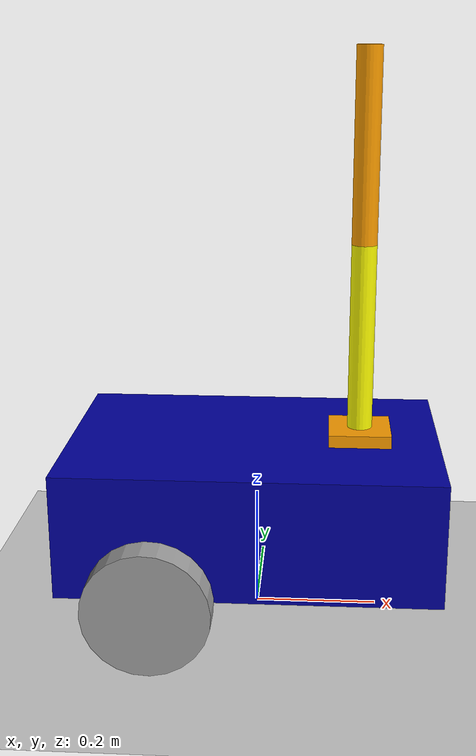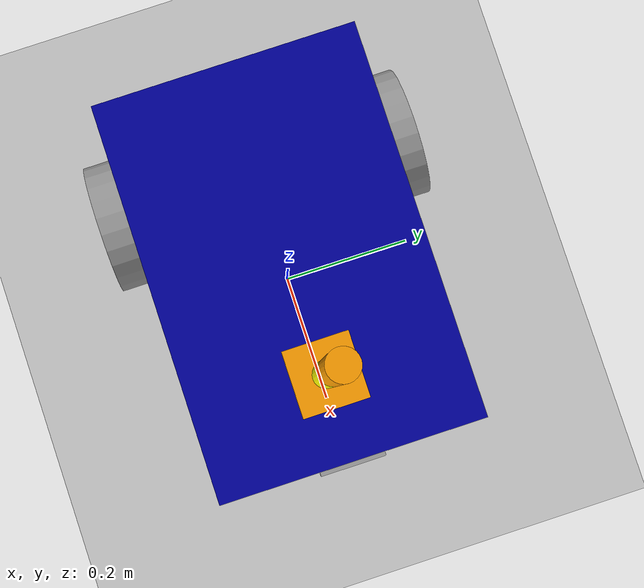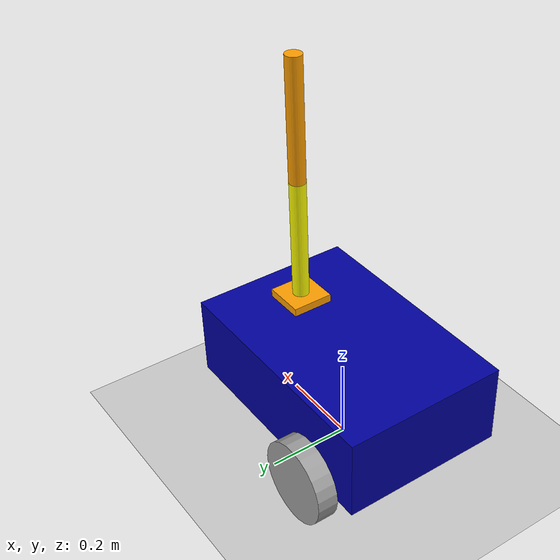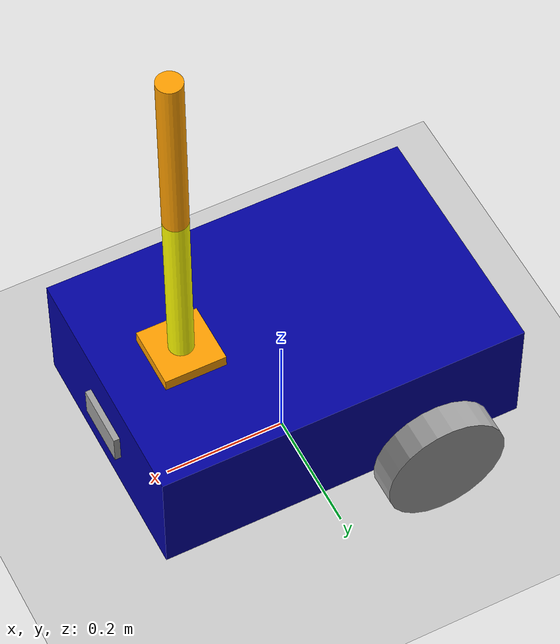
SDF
<?xml version="1.0"?>
<sdf version='1.9'>
  <world name='my_robot_world'>
    <physics name='1ms' type='ignored'>
      <max_step_size>0.001</max_step_size>
      <real_time_factor>1</real_time_factor>
      <real_time_update_rate>1000</real_time_update_rate>
    </physics>
    <plugin name='gz::sim::systems::Physics' filename='ignition-gazebo-physics-system'/>
    <plugin name='gz::sim::systems::UserCommands' filename='ignition-gazebo-user-commands-system'/>
    <plugin name='gz::sim::systems::SceneBroadcaster' filename='ignition-gazebo-scene-broadcaster-system'/>
    <plugin name='gz::sim::systems::Contact' filename='ignition-gazebo-contact-system'/>
    <gravity>0 0 -9.8</gravity>
    <magnetic_field>6e-06 2.3e-05 -4.2e-05</magnetic_field>
    <atmosphere type='adiabatic'/>
    <scene>
      <ambient>0.4 0.4 0.4 1</ambient>
      <background>0.7 0.7 0.7 1</background>
      <shadows>true</shadows>
    </scene>
    <!-- Keyboard movement -->
    <plugin name='ignition::gazebo::systems::TriggeredPublisher' filename='libignition-gazebo-triggered-publisher-system.so'>
      <input type='ignition.msgs.Int32' topic='/keyboard/keypress'>
        <match field='data'>16777235</match><!-- Up -->
      </input>
      <output type='ignition.msgs.Twist' topic='/cmd_vel'>linear: {x: 0.5}, angular: {z: 0.0}</output>
    </plugin>
    <plugin name='ignition::gazebo::systems::TriggeredPublisher' filename='libignition-gazebo-triggered-publisher-system.so'>
      <input type='ignition.msgs.Int32' topic='/keyboard/keypress'>
        <match field='data'>16777237</match><!-- Down -->
      </input>
      <output type='ignition.msgs.Twist' topic='/cmd_vel'>linear: {x: -0.5}, angular: {z: 0.0}</output>
    </plugin>
    <plugin name='ignition::gazebo::systems::TriggeredPublisher' filename='libignition-gazebo-triggered-publisher-system.so'>
      <input type='ignition.msgs.Int32' topic='/keyboard/keypress'>
        <match field='data'>16777234</match><!-- Left -->
      </input>
      <output type='ignition.msgs.Twist' topic='/cmd_vel'>linear: {x: 0.0}, angular: {z: 0.5}</output>
    </plugin>
    <plugin name='ignition::gazebo::systems::TriggeredPublisher' filename='libignition-gazebo-triggered-publisher-system.so'>
      <input type='ignition.msgs.Int32' topic='/keyboard/keypress'>
        <match field='data'>16777236</match><!-- Right -->
      </input>
      <output type='ignition.msgs.Twist' topic='/cmd_vel'>linear: {x: 0.0}, angular: {z: -0.5}</output>
    </plugin>
    <plugin name='ignition::gazebo::systems::TriggeredPublisher' filename='libignition-gazebo-triggered-publisher-system.so'>
      <input type='ignition.msgs.Int32' topic='/keyboard/keypress'>
        <match field='data'>48</match><!-- Stop -->
      </input>
      <output type='ignition.msgs.Twist' topic='/cmd_vel'>linear: {x: 0.0}, angular: {z: 0.0}</output>
    </plugin>
    <plugin name='ignition::gazebo::systems::TriggeredPublisher' filename='libignition-gazebo-triggered-publisher-system.so'>
      <input type='ignition.msgs.Int32' topic='/keyboard/keypress'>
        <match field='data'>16777221</match><!-- Reset arm intro numpad -->
      </input>
      <output type='ignition.msgs.Double' topic='/model/urdf_model/joint/arm_base_forearm_joint/0/cmd_pos'>data: 0.0</output>
      <output type='ignition.msgs.Double' topic='/model/urdf_model/joint/forearm_hand_joint/0/cmd_pos'>data: 0.0</output>
    </plugin>
    <model name='ground_plane'>
      <static>true</static>
      <link name='link'>
        <collision name='collision'>
          <geometry>
            <plane>
              <normal>0 0 1</normal>
              <size>100 100</size>
            </plane>
          </geometry>
          <surface>
            <friction>
              <ode/>
            </friction>
            <bounce/>
            <contact/>
          </surface>
        </collision>
        <visual name='visual'>
          <geometry>
            <plane>
              <normal>0 0 1</normal>
              <size>100 100</size>
            </plane>
          </geometry>
          <material>
            <ambient>0.8 0.8 0.8 1</ambient>
            <diffuse>0.8 0.8 0.8 1</diffuse>
            <specular>0.8 0.8 0.8 1</specular>
          </material>
        </visual>
        <pose>0 0 0 0 -0 0</pose>
        <inertial>
          <pose>0 0 0 0 -0 0</pose>
          <mass>1</mass>
          <inertia>
            <ixx>1</ixx>
            <ixy>0</ixy>
            <ixz>0</ixz>
            <iyy>1</iyy>
            <iyz>0</iyz>
            <izz>1</izz>
          </inertia>
        </inertial>
        <enable_wind>false</enable_wind>
      </link>
      <pose>0 0 0 0 -0 0</pose>
      <self_collide>false</self_collide>
    </model>
    <model name='urdf_model'>
      <link name='base_footprint'>
        <inertial>
          <pose>0.035445 0 0.196721 0 -0 0</pose>
          <mass>6.0999999999999996</mass>
          <inertia>
            <ixx>0.68675600000000003</ixx>
            <ixy>-1.13311e-19</ixy>
            <ixz>0.0048625300000000003</ixz>
            <iyy>0.92275099999999999</iyy>
            <iyz>0</iyz>
            <izz>0.37220399999999998</izz>
          </inertia>
        </inertial>
        <collision name='base_footprint_fixed_joint_lump__base_link_collision'>
          <pose>0 0 0.2 0 0 0</pose>
          <geometry>
            <box>
              <size>0.6 0.4 0.2</size>
            </box>
          </geometry>
          <surface>
            <friction>
              <ode/>
            </friction>
            <bounce/>
            <contact/>
          </surface>
        </collision>
        <collision name='base_footprint_fixed_joint_lump__camera_link_collision_1'>
          <pose>0.305 0 0.2 0 0 0</pose>
          <geometry>
            <box>
              <size>0.01 0.1 0.05</size>
            </box>
          </geometry>
          <surface>
            <friction>
              <ode/>
            </friction>
            <bounce/>
            <contact/>
          </surface>
        </collision>
        <collision name='base_footprint_fixed_joint_lump__caster_wheel_link_collision_2'>
          <pose>0.2 0 0.05 0 0 0</pose>
          <geometry>
            <sphere>
              <radius>0.050000000000000003</radius>
            </sphere>
          </geometry>
          <surface>
            <friction>
              <ode>
                <mu>0.1</mu>
                <mu2>0.1</mu2>
              </ode>
            </friction>
            <bounce/>
            <contact/>
          </surface>
        </collision>
        <collision name='base_footprint_fixed_joint_lump__arm_base_link_collision_3'>
          <pose>0.1714285714285714 0 0.3100000000000001 0 0 1.570796326794896</pose>
          <geometry>
            <box>
              <size>0.1 0.1 0.02</size>
            </box>
          </geometry>
          <surface>
            <friction>
              <ode/>
            </friction>
            <bounce/>
            <contact/>
          </surface>
        </collision>
        <visual name='base_footprint_fixed_joint_lump__base_link_visual'>
          <pose>0 0 0.2 0 0 0</pose>
          <geometry>
            <box>
              <size>0.6 0.4 0.2</size>
            </box>
          </geometry>
          <material>
            <diffuse>0 0 0.625 1</diffuse>
            <ambient>0 0 0.625 1</ambient>
          </material>
        </visual>
        <visual name='base_footprint_fixed_joint_lump__camera_link_visual_1'>
          <pose>0.305 0 0.2 0 0 0</pose>
          <geometry>
            <box>
              <size>0.01 0.1 0.05</size>
            </box>
          </geometry>
          <material>
            <diffuse>0.625 0.625 0.625 1</diffuse>
            <ambient>0.625 0.625 0.625 1</ambient>
          </material>
        </visual>
        <visual name='base_footprint_fixed_joint_lump__caster_wheel_link_visual_2'>
          <pose>0.2 0 0.05 0 0 0</pose>
          <geometry>
            <sphere>
              <radius>0.050000000000000003</radius>
            </sphere>
          </geometry>
          <material>
            <diffuse>0.625 0.625 0.625 1</diffuse>
            <ambient>0.625 0.625 0.625 1</ambient>
          </material>
        </visual>
        <visual name='base_footprint_fixed_joint_lump__arm_base_link_visual_3'>
          <pose>0.1714285714285714 0 0.3100000000000001 0 0 1.570796326794896</pose>
          <geometry>
            <box>
              <size>0.1 0.1 0.02</size>
            </box>
          </geometry>
          <material>
            <diffuse>1 0.625 0 1</diffuse>
            <ambient>1 0.625 0 1</ambient>
          </material>
        </visual>
        <pose>0 0 0 0 -0 0</pose>
        <enable_wind>false</enable_wind>
      </link>
      <joint name='base_left_wheel_joint' type='revolute'>
        <pose>0 0 0 0 -0 0</pose>
        <parent>base_footprint</parent>
        <child>left_wheel_link</child>
        <axis>
          <xyz>0 1 0</xyz>
          <limit>
            <lower>-10000000000000000</lower>
            <upper>10000000000000000</upper>
            <effort>inf</effort>
            <velocity>inf</velocity>
            <stiffness>100000000</stiffness>
            <dissipation>1</dissipation>
          </limit>
          <dynamics>
            <spring_reference>0</spring_reference>
            <spring_stiffness>0</spring_stiffness>
            <damping>0</damping>
            <friction>0</friction>
          </dynamics>
        </axis>
      </joint>
      <link name='left_wheel_link'>
        <pose>-0.15 0.225 0.1 -0 -0.059289 -0</pose>
        <inertial>
          <pose>0 0 0 1.5708 -0 0</pose>
          <mass>1</mass>
          <inertia>
            <ixx>0.010833300000000001</ixx>
            <ixy>0</ixy>
            <ixz>0</ixz>
            <iyy>0.010833300000000001</iyy>
            <iyz>0</iyz>
            <izz>0.02</izz>
          </inertia>
        </inertial>
        <collision name='left_wheel_link_collision'>
          <pose>0 0 0 1.570796326794896 0 0</pose>
          <geometry>
            <cylinder>
              <length>0.050000000000000003</length>
              <radius>0.10000000000000001</radius>
            </cylinder>
          </geometry>
          <surface>
            <friction>
              <ode/>
            </friction>
            <bounce/>
            <contact/>
          </surface>
        </collision>
        <visual name='left_wheel_link_visual'>
          <pose>0 0 0 1.570796326794896 0 0</pose>
          <geometry>
            <cylinder>
              <length>0.050000000000000003</length>
              <radius>0.10000000000000001</radius>
            </cylinder>
          </geometry>
          <material>
            <diffuse>0.625 0.625 0.625 1</diffuse>
            <ambient>0.625 0.625 0.625 1</ambient>
          </material>
        </visual>
        <enable_wind>false</enable_wind>
      </link>
      <joint name='base_right_wheel_joint' type='revolute'>
        <pose>0 0 0 0 -0 0</pose>
        <parent>base_footprint</parent>
        <child>right_wheel_link</child>
        <axis>
          <xyz>0 1 0</xyz>
          <limit>
            <lower>-10000000000000000</lower>
            <upper>10000000000000000</upper>
            <effort>inf</effort>
            <velocity>inf</velocity>
            <stiffness>100000000</stiffness>
            <dissipation>1</dissipation>
          </limit>
          <dynamics>
            <spring_reference>0</spring_reference>
            <spring_stiffness>0</spring_stiffness>
            <damping>0</damping>
            <friction>0</friction>
          </dynamics>
        </axis>
      </joint>
      <link name='right_wheel_link'>
        <pose>-0.15 -0.225 0.1 -0 -0.059289 -0</pose>
        <inertial>
          <pose>0 0 0 1.5708 -0 0</pose>
          <mass>1</mass>
          <inertia>
            <ixx>0.010833300000000001</ixx>
            <ixy>0</ixy>
            <ixz>0</ixz>
            <iyy>0.010833300000000001</iyy>
            <iyz>0</iyz>
            <izz>0.02</izz>
          </inertia>
        </inertial>
        <collision name='right_wheel_link_collision'>
          <pose>0 0 0 1.570796326794896 0 0</pose>
          <geometry>
            <cylinder>
              <length>0.050000000000000003</length>
              <radius>0.10000000000000001</radius>
            </cylinder>
          </geometry>
          <surface>
            <friction>
              <ode/>
            </friction>
            <bounce/>
            <contact/>
          </surface>
        </collision>
        <visual name='right_wheel_link_visual'>
          <pose>0 0 0 1.570796326794896 0 0</pose>
          <geometry>
            <cylinder>
              <length>0.050000000000000003</length>
              <radius>0.10000000000000001</radius>
            </cylinder>
          </geometry>
          <material>
            <diffuse>0.625 0.625 0.625 1</diffuse>
            <ambient>0.625 0.625 0.625 1</ambient>
          </material>
        </visual>
        <enable_wind>false</enable_wind>
      </link>
      <joint name='arm_base_forearm_joint' type='revolute'>
        <pose>0 -0 0 0 -0 0</pose>
        <parent>base_footprint</parent>
        <child>forearm_link</child>
        <axis>
          <xyz>1 0 0</xyz>
          <limit>
            <lower>0</lower>
            <upper>1.5708</upper>
            <effort>100</effort>
            <velocity>100</velocity>
            <stiffness>100000000</stiffness>
            <dissipation>1</dissipation>
          </limit>
          <dynamics>
            <spring_reference>0</spring_reference>
            <spring_stiffness>0</spring_stiffness>
            <damping>0.10000000000000001</damping>
            <friction>0.050000000000000003</friction>
          </dynamics>
        </axis>
      </joint>
      <plugin name='ignition::gazebo::systems::JointPositionController' filename='libignition-gazebo-joint-position-controller-system.so'>
        <joint_name>arm_base_forearm_joint</joint_name>
        <target>0</target>
      </plugin>
      <link name='forearm_link'>
        <pose>0.171429 0 0.32 -0 0 1.5708</pose>
        <inertial>
          <pose>0 0 0.15 0 -0 0</pose>
          <mass>0.29999999999999999</mass>
          <inertia>
            <ixx>0.0022799999999999999</ixx>
            <ixy>0</ixy>
            <ixz>0</ixz>
            <iyy>0.0022799999999999999</iyy>
            <iyz>0</iyz>
            <izz>6.0000000000000002e-05</izz>
          </inertia>
        </inertial>
        <collision name='forearm_link_collision'>
          <pose>0 0 0.15 0 0 0</pose>
          <geometry>
            <cylinder>
              <length>0.29999999999999999</length>
              <radius>0.02</radius>
            </cylinder>
          </geometry>
          <surface>
            <friction>
              <ode/>
            </friction>
            <bounce/>
            <contact/>
          </surface>
        </collision>
        <visual name='forearm_link_visual'>
          <pose>0 0 0.15 0 0 0</pose>
          <geometry>
            <cylinder>
              <length>0.29999999999999999</length>
              <radius>0.02</radius>
            </cylinder>
          </geometry>
          <material>
            <diffuse>1 1 0 1</diffuse>
            <ambient>1 1 0 1</ambient>
          </material>
        </visual>
        <enable_wind>false</enable_wind>
      </link>
      <joint name='forearm_hand_joint' type='revolute'>
        <pose>0 -0 0 0 -0 0</pose>
        <parent>forearm_link</parent>
        <child>hand_link</child>
        <axis>
          <xyz>1 0 0</xyz>
          <limit>
            <lower>0</lower>
            <upper>1.5708</upper>
            <effort>100</effort>
            <velocity>100</velocity>
            <stiffness>100000000</stiffness>
            <dissipation>1</dissipation>
          </limit>
          <dynamics>
            <spring_reference>0</spring_reference>
            <spring_stiffness>0</spring_stiffness>
            <damping>0.10000000000000001</damping>
            <friction>0.050000000000000003</friction>
          </dynamics>
        </axis>
      </joint>
      <plugin name='ignition::gazebo::systems::JointPositionController' filename='libignition-gazebo-joint-position-controller-system.so'>
        <joint_name>forearm_hand_joint</joint_name>
        <target>0</target>
      </plugin>
      <link name='hand_link'>
        <pose>0.171429 0 0.62 -0 0 1.5708</pose>
        <inertial>
          <pose>0 0 0.15 0 -0 0</pose>
          <mass>0.29999999999999999</mass>
          <inertia>
            <ixx>0.0022799999999999999</ixx>
            <ixy>0</ixy>
            <ixz>0</ixz>
            <iyy>0.0022799999999999999</iyy>
            <iyz>0</iyz>
            <izz>6.0000000000000002e-05</izz>
          </inertia>
        </inertial>
        <collision name='hand_link_collision'>
          <pose>0 0 0.15 0 0 0</pose>
          <geometry>
            <cylinder>
              <length>0.29999999999999999</length>
              <radius>0.02</radius>
            </cylinder>
          </geometry>
          <surface>
            <friction>
              <ode/>
            </friction>
            <bounce/>
            <contact/>
          </surface>
        </collision>
        <visual name='hand_link_visual'>
          <pose>0 0 0.15 0 0 0</pose>
          <geometry>
            <cylinder>
              <length>0.29999999999999999</length>
              <radius>0.02</radius>
            </cylinder>
          </geometry>
          <material>
            <diffuse>1 0.625 0 1</diffuse>
            <ambient>1 0.625 0 1</ambient>
          </material>
        </visual>
        <enable_wind>false</enable_wind>
      </link>
      <frame name='base_camera_joint' attached_to='base_link'>
        <pose>0.305 0 0.1 0 -0 0</pose>
      </frame>
      <frame name='camera_link' attached_to='base_camera_joint'/>
      <frame name='base_caster_wheel_joint' attached_to='base_link'>
        <pose>0.2 0 -0.05 0 -0 0</pose>
      </frame>
      <frame name='caster_wheel_link' attached_to='base_caster_wheel_joint'/>
      <frame name='mobile_base_arm_base_joint' attached_to='base_link'>
        <pose>0.171429 0 0.2 0 -0 1.5708</pose>
      </frame>
      <frame name='arm_base_link' attached_to='mobile_base_arm_base_joint'/>
      <frame name='base_joint' attached_to='base_footprint'>
        <pose>0 0 0.1 0 -0 0</pose>
      </frame>
      <frame name='base_link' attached_to='base_joint'/>
      <pose>-0.004507 -0 -0 0 1e-06 0</pose>
      <static>false</static>
      <self_collide>false</self_collide>
      <plugin filename="libignition-gazebo-diff-drive-system.so" name="ignition::gazebo::systems::DiffDrive">
        <left_joint>base_left_wheel_joint</left_joint>
        <right_joint>base_right_wheel_joint</right_joint>
        <wheel_separation>0.45</wheel_separation>
        <wheel_radius>0.1</wheel_radius>
        <odom_publish_frequency>1</odom_publish_frequency>
        <topic>cmd_vel</topic>
    </plugin>
    </model>
    <light name='sun' type='directional'>
      <pose>0 0 10 0 -0 0</pose>
      <cast_shadows>true</cast_shadows>
      <intensity>1</intensity>
      <direction>-0.5 0.1 -0.9</direction>
      <diffuse>0.8 0.8 0.8 1</diffuse>
      <specular>0.2 0.2 0.2 1</specular>
      <attenuation>
        <range>1000</range>
        <linear>0.01</linear>
        <constant>0.90000000000000002</constant>
        <quadratic>0.001</quadratic>
      </attenuation>
      <spot>
        <inner_angle>0</inner_angle>
        <outer_angle>0</outer_angle>
        <falloff>0</falloff>
      </spot>
    </light>
  </world>
</sdf>
